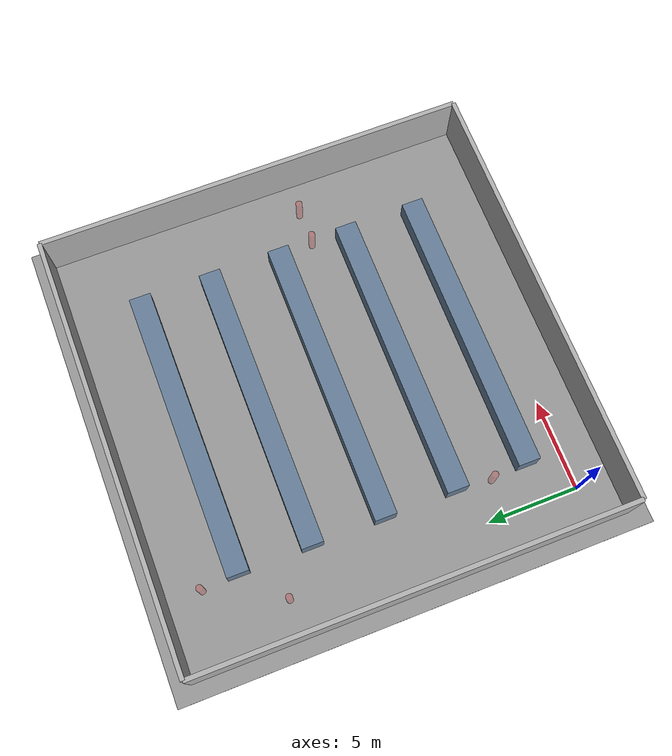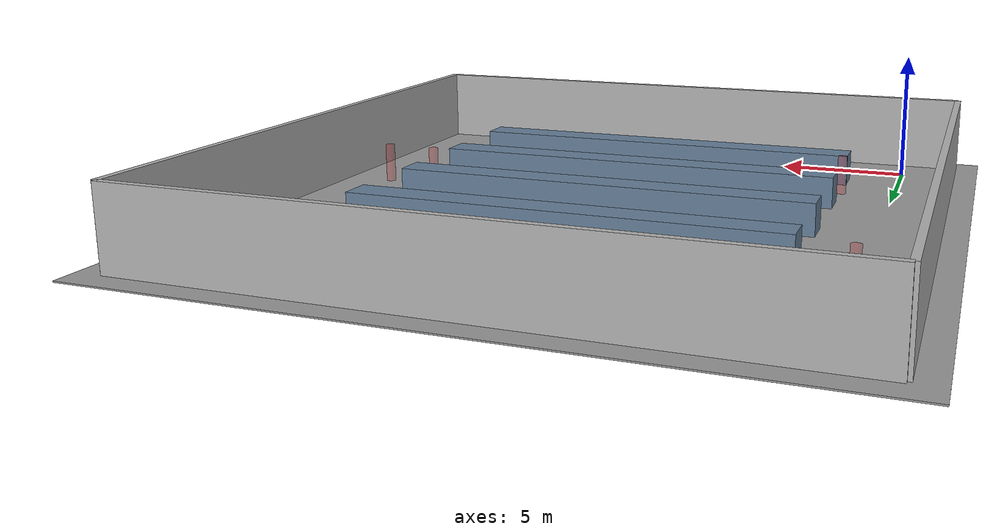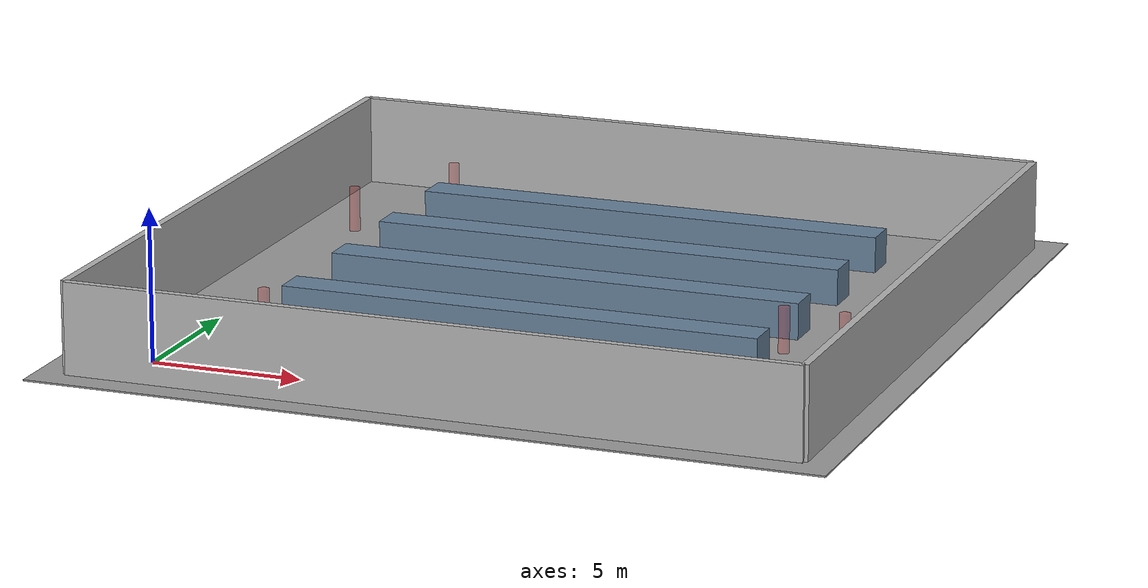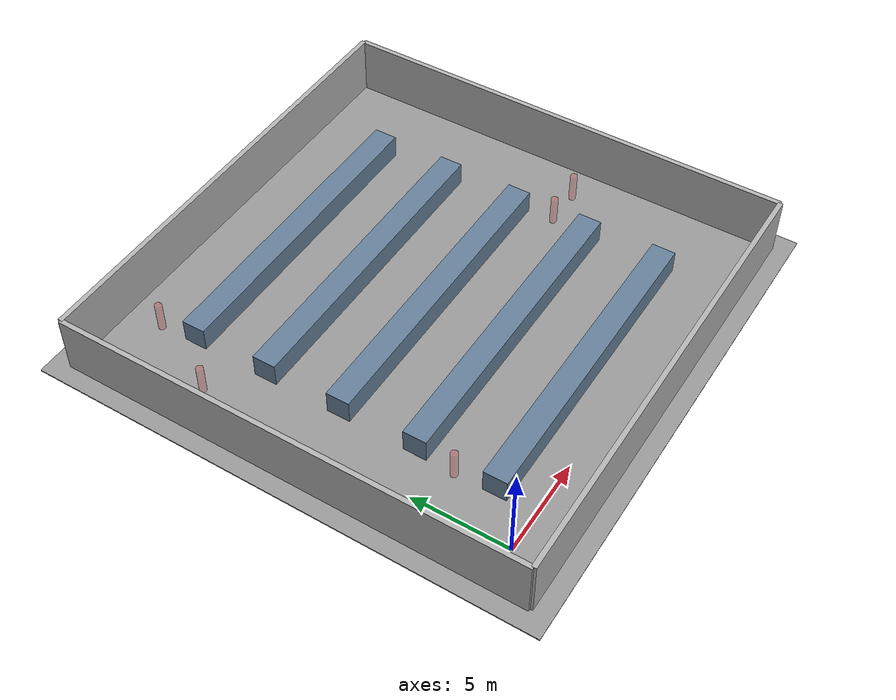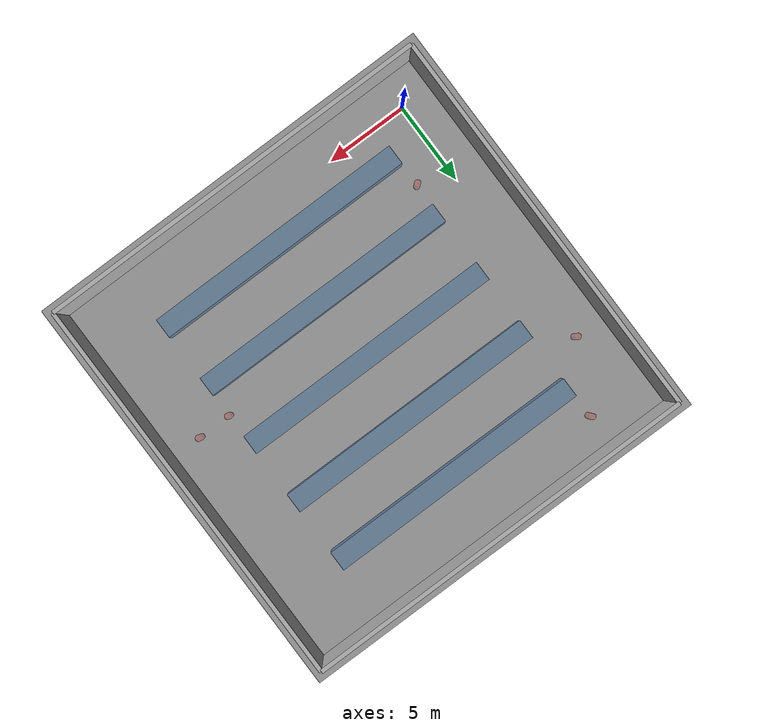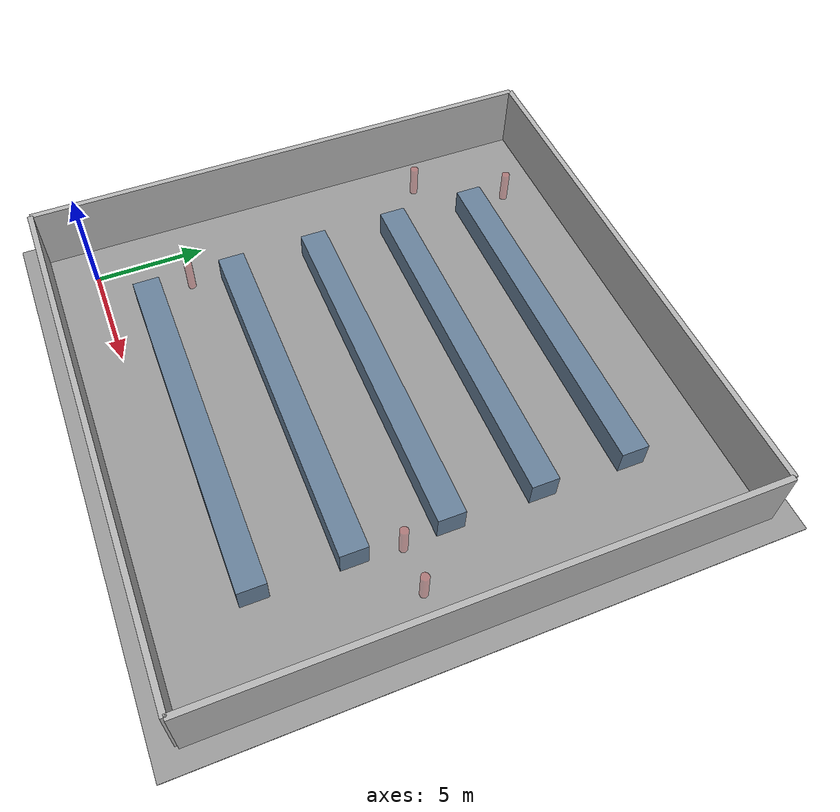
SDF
<?xml version="1.0"?>
<sdf version="1.6">
  <world name="factory_environment">
    <!-- Direct Light to prevent online fetching -->
    <!-- ==================== sun：方向光 ==================== -->
    <!-- 内置方向光：从 (-0.5, 0.1, -0.9) 方向照射，开阴影，
         衰减范围 1000m，避免依赖在线 sun 模型。 -->
    <light name="sun" type="directional">
      <cast_shadows>1</cast_shadows>
      <pose>0 0 10 0 0 0</pose>
      <diffuse>0.8 0.8 0.8 1</diffuse>
      <specular>0.2 0.2 0.2 1</specular>
      <attenuation>
        <range>1000</range>
        <constant>0.9</constant>
        <linear>0.01</linear>
        <quadratic>0.001</quadratic>
      </attenuation>
      <direction>-0.5 0.1 -0.9</direction>
    </light>

    <!-- Ground -->
    <!-- ==================== ground：地面 ==================== -->
    <!-- 静态地面：26m × 26m × 0.05m，整体位于 (10, 10) 中心，
         使场地有效范围约为 x/y ∈ [0, 20]（与巡检点坐标对齐）。 -->
    <model name="ground">
      <static>true</static>
      <link name="ground_link">
        <collision name="collision">
          <geometry>
            <box>
              <size>26 26 0.05</size>
            </box>
          </geometry>
        </collision>
        <visual name="visual">
          <geometry>
            <box>
              <size>26 26 0.05</size>
            </box>
          </geometry>
          <material>
            <ambient>0.6 0.6 0.6 1</ambient>
            <diffuse>0.6 0.6 0.6 1</diffuse>
          </material>
        </visual>
      </link>
      <pose>10 10 -0.025 0 0 0</pose>
    </model>

    <!-- Walls -->
    <!-- ==================== 四面围墙 ==================== -->
    <!-- 北墙（y=22）、南墙（y=-2）、西墙（x=-2）、东墙（x=22）：
         均为 24m 长 × 0.25m 厚 × 3.0m 高的静态墙体，围成
         [0,20]×[0,20] 的有效导航区域。 -->
    <model name="north_wall">
      <static>true</static>
      <pose>10 22 1.5 0 0 0</pose>
      <link name="link">
        <collision name="collision"><geometry><box><size>24 0.25 3.0</size></box></geometry></collision>
        <visual name="visual"><geometry><box><size>24 0.25 3.0</size></box></geometry><material><ambient>0.7 0.7 0.7 1</ambient><diffuse>0.7 0.7 0.7 1</diffuse></material></visual>
      </link>
    </model>
    <model name="south_wall">
      <static>true</static>
      <pose>10 -2 1.5 0 0 0</pose>
      <link name="link">
        <collision name="collision"><geometry><box><size>24 0.25 3.0</size></box></geometry></collision>
        <visual name="visual"><geometry><box><size>24 0.25 3.0</size></box></geometry><material><ambient>0.7 0.7 0.7 1</ambient><diffuse>0.7 0.7 0.7 1</diffuse></material></visual>
      </link>
    </model>
    <model name="west_wall">
      <static>true</static>
      <pose>-2 10 1.5 0 0 0</pose>
      <link name="link">
        <collision name="collision"><geometry><box><size>0.25 24 3.0</size></box></geometry></collision>
        <visual name="visual"><geometry><box><size>0.25 24 3.0</size></box></geometry><material><ambient>0.7 0.7 0.7 1</ambient><diffuse>0.7 0.7 0.7 1</diffuse></material></visual>
      </link>
    </model>
    <model name="east_wall">
      <static>true</static>
      <pose>22 10 1.5 0 0 0</pose>
      <link name="link">
        <collision name="collision"><geometry><box><size>0.25 24 3.0</size></box></geometry></collision>
        <visual name="visual"><geometry><box><size>0.25 24 3.0</size></box></geometry><material><ambient>0.7 0.7 0.7 1</ambient><diffuse>0.7 0.7 0.7 1</diffuse></material></visual>
      </link>
    </model>

    <!-- 5 Rows of Desks/Machines with 4m spacing -->
    <!-- ==================== 5 排工作台（desk_row_1~5） ==================== -->
    <!-- 静态设备排：每排 16m × 1.2m × 1.2m，位于 x=10 沿 y 方向
         每 4m 一排（y=18/14/10/6/2），将场地分割成
         y=4/8/12/16/20 五条东西向巡检通道。 -->
    <model name="desk_row_1">
      <static>true</static>
      <pose>10 18 0.6 0 0 0</pose>
      <link name="link">
        <collision name="collision"><geometry><box><size>16 1.2 1.2</size></box></geometry></collision>
        <visual name="visual"><geometry><box><size>16 1.2 1.2</size></box></geometry><material><ambient>0.4 0.5 0.6 1</ambient><diffuse>0.4 0.5 0.6 1</diffuse></material></visual>
      </link>
    </model>
    <model name="desk_row_2">
      <static>true</static>
      <pose>10 14 0.6 0 0 0</pose>
      <link name="link">
        <collision name="collision"><geometry><box><size>16 1.2 1.2</size></box></geometry></collision>
        <visual name="visual"><geometry><box><size>16 1.2 1.2</size></box></geometry><material><ambient>0.4 0.5 0.6 1</ambient><diffuse>0.4 0.5 0.6 1</diffuse></material></visual>
      </link>
    </model>
    <model name="desk_row_3">
      <static>true</static>
      <pose>10 10 0.6 0 0 0</pose>
      <link name="link">
        <collision name="collision"><geometry><box><size>16 1.2 1.2</size></box></geometry></collision>
        <visual name="visual"><geometry><box><size>16 1.2 1.2</size></box></geometry><material><ambient>0.4 0.5 0.6 1</ambient><diffuse>0.4 0.5 0.6 1</diffuse></material></visual>
      </link>
    </model>
    <model name="desk_row_4">
      <static>true</static>
      <pose>10 6 0.6 0 0 0</pose>
      <link name="link">
        <collision name="collision"><geometry><box><size>16 1.2 1.2</size></box></geometry></collision>
        <visual name="visual"><geometry><box><size>16 1.2 1.2</size></box></geometry><material><ambient>0.4 0.5 0.6 1</ambient><diffuse>0.4 0.5 0.6 1</diffuse></material></visual>
      </link>
    </model>
    <model name="desk_row_5">
      <static>true</static>
      <pose>10 2 0.6 0 0 0</pose>
      <link name="link">
        <collision name="collision"><geometry><box><size>16 1.2 1.2</size></box></geometry></collision>
        <visual name="visual"><geometry><box><size>16 1.2 1.2</size></box></geometry><material><ambient>0.4 0.5 0.6 1</ambient><diffuse>0.4 0.5 0.6 1</diffuse></material></visual>
      </link>
    </model>

    <!-- Dynamic workers: shared collision and visual cylinders. -->
    <!-- 每个 worker_*_scan_proxy 都是唯一的 Gazebo 可视/碰撞对象；SDF 到
         MJCF 的转换器也只读取 model，因此 MuJoCo Viewer 和 Gazebo 都显示
         同一批红色圆柱。人物 actor 故意不在本 world 中，避免两边画面不同。 -->

    <!-- worker_1_scan_proxy：工人 1 的扫描代理（红色半透明圆柱，
         碰撞半径 0.24m、高 1.5m），沿 y=4 通道东西向往返（x=2↔18）。 -->
    <model name="worker_1_scan_proxy">
      <static>false</static>
      <pose>2 4 0.75 0 0 0</pose>
      <link name="body">
        <gravity>false</gravity>
        <collision name="collision">
          <geometry><cylinder><radius>0.24</radius><length>1.5</length></cylinder></geometry>
        </collision>
        <visual name="visual">
          <geometry><cylinder><radius>0.18</radius><length>1.5</length></cylinder></geometry>
          <material><ambient>0.9 0.1 0.1 0.25</ambient><diffuse>0.9 0.1 0.1 0.25</diffuse></material>
          <transparency>0.75</transparency>
        </visual>
      </link>
      <!-- 路点运动插件：y=4 通道东西往返（移动速度 0.35m/s）。 -->
      <plugin name="waypoint_motion" filename="libm20_waypoint_obstacle_plugin.so">
        <loop>true</loop>
        <trajectory>0 2 4 0.75 0 0 0;45.7142857143 18 4 0.75 0 0 0;51.4285714286 18 4 0.75 0 0 3.14159;97.1428571429 2 4 0.75 0 0 3.14159;102.8571428571 2 4 0.75 0 0 6.28318</trajectory>
      </plugin>
    </model>

    <!-- worker_2_scan_proxy：工人 2 的扫描代理，沿 y=8 通道东西向往返（x=18↔2）。 -->
    <model name="worker_2_scan_proxy">
      <static>false</static>
      <pose>18 8 0.75 0 0 3.14159</pose>
      <link name="body">
        <gravity>false</gravity>
        <collision name="collision">
          <geometry><cylinder><radius>0.24</radius><length>1.5</length></cylinder></geometry>
        </collision>
        <visual name="visual">
          <geometry><cylinder><radius>0.18</radius><length>1.5</length></cylinder></geometry>
          <material><ambient>0.9 0.1 0.1 0.25</ambient><diffuse>0.9 0.1 0.1 0.25</diffuse></material>
          <transparency>0.75</transparency>
        </visual>
      </link>
      <!-- 路点运动插件：y=8 通道东西往返（x=18↔2）。 -->
      <plugin name="waypoint_motion" filename="libm20_waypoint_obstacle_plugin.so">
        <loop>true</loop>
        <trajectory>0 18 8 0.75 0 0 3.14159;45.7142857143 2 8 0.75 0 0 3.14159;51.4285714286 2 8 0.75 0 0 6.28318;97.1428571429 18 8 0.75 0 0 6.28318;102.8571428571 18 8 0.75 0 0 9.42477</trajectory>
      </plugin>
    </model>

    <!-- worker_3_scan_proxy：工人 3 的扫描代理，沿 y=20 通道东西向往返（x=2↔18）。 -->
    <model name="worker_3_scan_proxy">
      <static>false</static>
      <pose>2 20 0.75 0 0 0</pose>
      <link name="body">
        <gravity>false</gravity>
        <collision name="collision">
          <geometry><cylinder><radius>0.24</radius><length>1.5</length></cylinder></geometry>
        </collision>
        <visual name="visual">
          <geometry><cylinder><radius>0.18</radius><length>1.5</length></cylinder></geometry>
          <material><ambient>0.9 0.1 0.1 0.25</ambient><diffuse>0.9 0.1 0.1 0.25</diffuse></material>
          <transparency>0.75</transparency>
        </visual>
      </link>
      <!-- 路点运动插件：y=20 通道东西往返（x=2↔18）。 -->
      <plugin name="waypoint_motion" filename="libm20_waypoint_obstacle_plugin.so">
        <loop>true</loop>
        <trajectory>0 2 20 0.75 0 0 0;45.7142857143 18 20 0.75 0 0 0;51.4285714286 18 20 0.75 0 0 3.14159;97.1428571429 2 20 0.75 0 0 3.14159;102.8571428571 2 20 0.75 0 0 6.28318</trajectory>
      </plugin>
    </model>

    <!-- worker_4_scan_proxy：工人 4 的扫描代理，绕第 3 排工作台
         （y=10 行）做完整矩形环路（20,8)→(20,12)→(0,12)→(0,8)→(20,8)。 -->
    <model name="worker_4_scan_proxy">
      <static>false</static>
      <pose>20 8 0.75 0 0 1.5708</pose>
      <link name="body">
        <gravity>false</gravity>
        <collision name="collision">
          <geometry><cylinder><radius>0.24</radius><length>1.5</length></cylinder></geometry>
        </collision>
        <visual name="visual">
          <geometry><cylinder><radius>0.18</radius><length>1.5</length></cylinder></geometry>
          <material><ambient>0.9 0.1 0.1 0.25</ambient><diffuse>0.9 0.1 0.1 0.25</diffuse></material>
          <transparency>0.75</transparency>
        </visual>
      </link>
      <!-- 路点运动插件：矩形环路，移动段速度 0.35m/s。 -->
      <plugin name="waypoint_motion" filename="libm20_waypoint_obstacle_plugin.so">
        <loop>true</loop>
        <trajectory>0 20 8 0.75 0 0 1.5708;11.4285714286 20 12 0.75 0 0 1.5708;15.7142857143 20 12 0.75 0 0 3.1416;72.8571428571 0 12 0.75 0 0 3.1416;77.1428571429 0 12 0.75 0 0 4.7124;88.5714285714 0 8 0.75 0 0 4.7124;92.8571428571 0 8 0.75 0 0 6.2832;150 20 8 0.75 0 0 6.2832;154.2857142857 20 8 0.75 0 0 7.8540</trajectory>
      </plugin>
    </model>

    <!-- worker_5_scan_proxy：工人 5 的扫描代理，绕第 1 排工作台
         （y=18 行）做完整矩形环路 (0,16)→(0,20)→(20,20)→(20,16)→(0,16)。 -->
    <model name="worker_5_scan_proxy">
      <static>false</static>
      <pose>0 16 0.75 0 0 1.5708</pose>
      <link name="body">
        <gravity>false</gravity>
        <collision name="collision">
          <geometry><cylinder><radius>0.24</radius><length>1.5</length></cylinder></geometry>
        </collision>
        <visual name="visual">
          <geometry><cylinder><radius>0.18</radius><length>1.5</length></cylinder></geometry>
          <material><ambient>0.9 0.1 0.1 0.25</ambient><diffuse>0.9 0.1 0.1 0.25</diffuse></material>
          <transparency>0.75</transparency>
        </visual>
      </link>
      <!-- 路点运动插件：矩形环路，移动段速度 0.35m/s。 -->
      <plugin name="waypoint_motion" filename="libm20_waypoint_obstacle_plugin.so">
        <loop>true</loop>
        <trajectory>0 0 16 0.75 0 0 1.5708;11.4285714286 0 20 0.75 0 0 1.5708;15.7142857143 0 20 0.75 0 0 0;72.8571428571 20 20 0.75 0 0 0;77.1428571429 20 20 0.75 0 0 -1.5708;88.5714285714 20 16 0.75 0 0 -1.5708;92.8571428571 20 16 0.75 0 0 -3.1416;150 0 16 0.75 0 0 -3.1416;154.2857142857 0 16 0.75 0 0 -4.7124</trajectory>
      </plugin>
    </model>

  </world>
</sdf>
